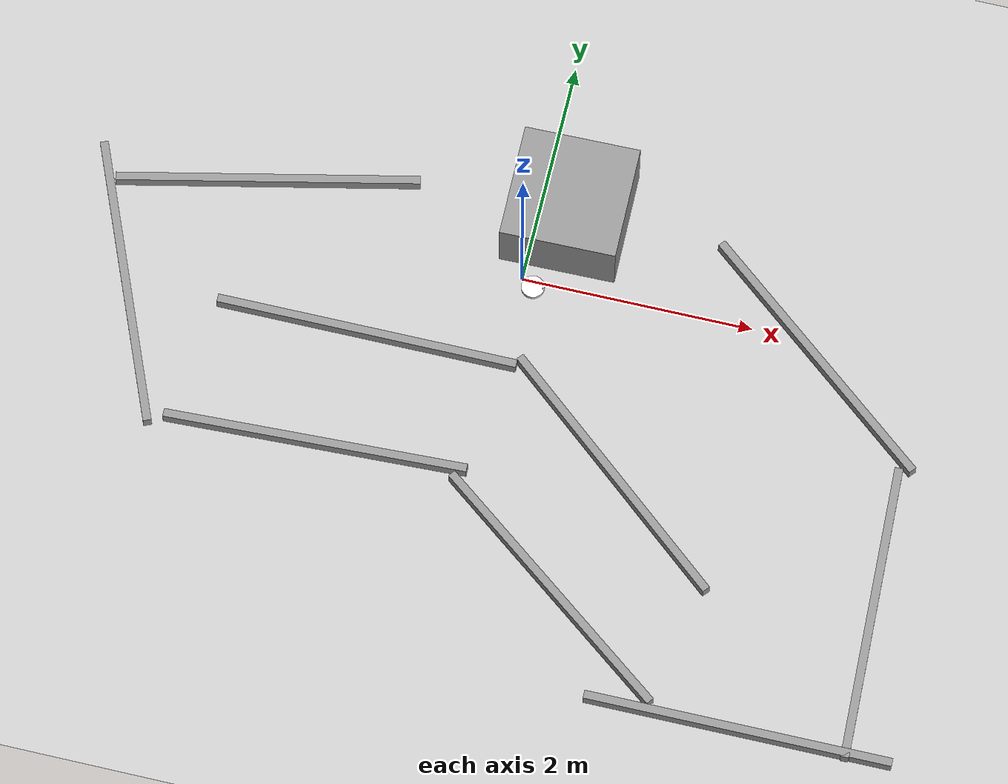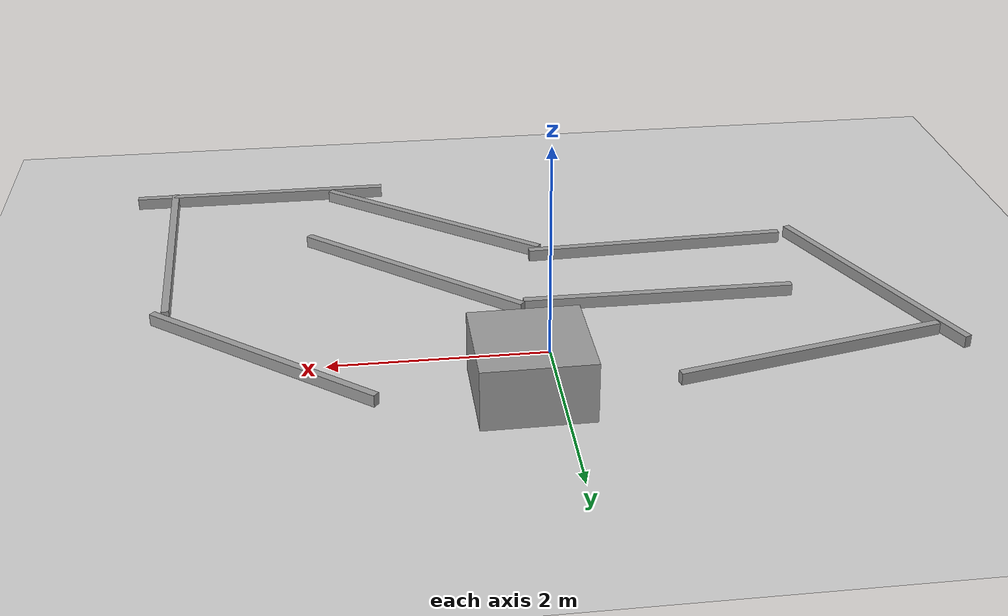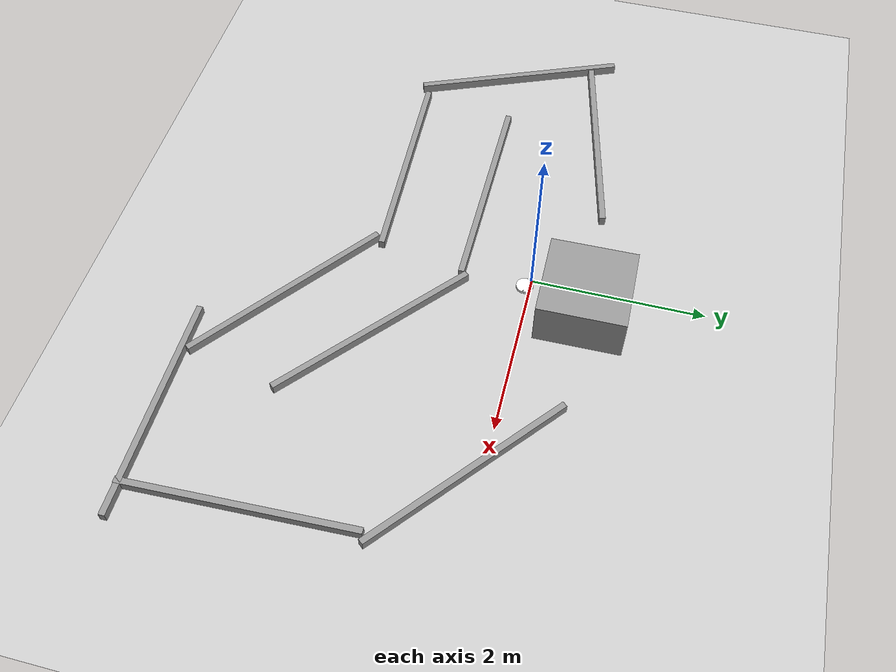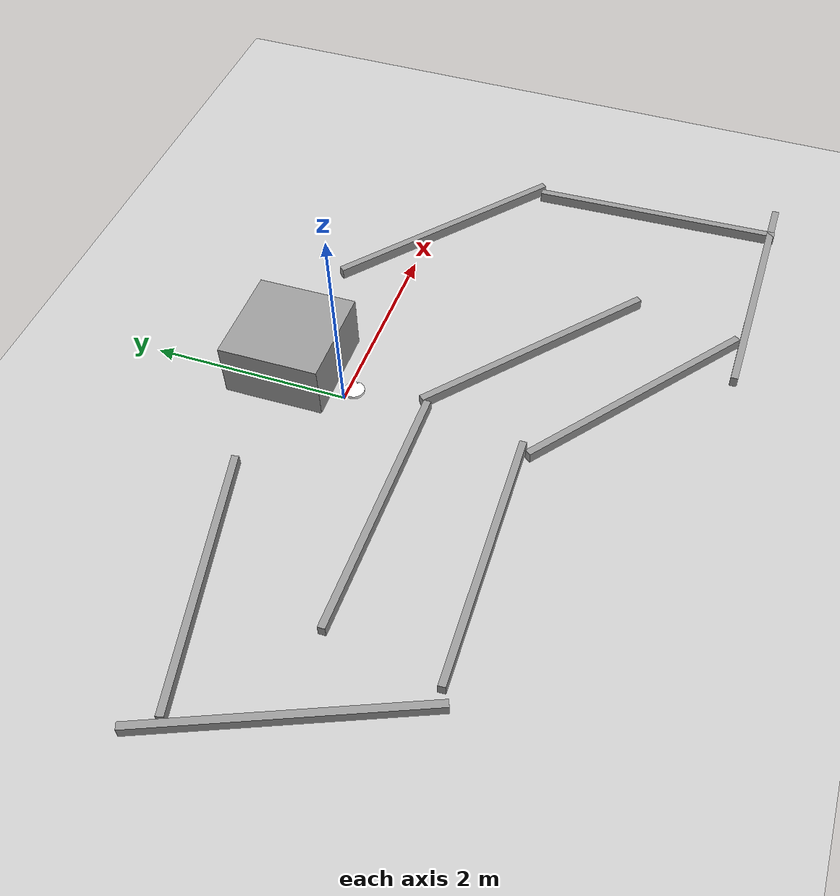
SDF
<sdf version="1.7">
 <world name="default">
  <light name="sun" type="directional">
   <pose>0 0 10 0 -0 0</pose>
   <diffuse>0.8 0.8 0.8 1</diffuse>
   <specular>0.2 0.2 0.2 1</specular>
   <attenuation>
    <range>1000</range>
    <constant>0.9</constant>
    <linear>0.01</linear>
    <quadratic>0.001</quadratic>
   </attenuation>
   <direction>-0.5 0.1 -0.9</direction>
   <spot><inner_angle>0</inner_angle><outer_angle>0</outer_angle><falloff>0</falloff></spot>
  </light>
  <model name="ground_plane">
   <static>1</static>
   <link name="link">
    <collision name="collision">
     <geometry><plane><normal>0 0 1</normal><size>100 100</size></plane></geometry>
     <surface>
      <contact><collide_bitmask>65535</collide_bitmask></contact>
      <friction><ode><mu>100</mu><mu2>50</mu2></ode></friction>
     </surface>
    </collision>
    <visual name="visual">
     <cast_shadows>0</cast_shadows>
     <geometry><plane><normal>0 0 1</normal><size>100 100</size></plane></geometry>
     <material>
      <script><uri>file://media/materials/scripts/gazebo.material</uri><name>Gazebo/Grey</name></script>
     </material>
    </visual>
   </link>
  </model>
  <gravity>0 0 -9.8</gravity>
  <magnetic_field>6e-06 2.3e-05 -4.2e-05</magnetic_field>
  <atmosphere type="adiabatic"/>
  <physics type="ode">
   <max_step_size>0.001</max_step_size>
   <real_time_factor>1</real_time_factor>
   <real_time_update_rate>1000</real_time_update_rate>
  </physics>
  <scene><ambient>0.4 0.4 0.4 1</ambient><background>0.7 0.7 0.7 1</background><shadows>1</shadows></scene>
  <spherical_coordinates>
   <surface_model>EARTH_WGS84</surface_model>
   <latitude_deg>0</latitude_deg>
   <longitude_deg>0</longitude_deg>
   <elevation>0</elevation>
   <heading_deg>0</heading_deg>
  </spherical_coordinates>
  <model name="my_robot">
   <static>0</static>
   <joint name="left_wheel_joint" type="revolute">
    <child>left_wheel</child>
    <parent>chassis</parent>
    <axis>
     <xyz expressed_in="__model__">0 0 1</xyz>
     <limit><lower>-1e+16</lower><upper>1e+16</upper></limit>
     <dynamics><spring_reference>0</spring_reference><spring_stiffness>0</spring_stiffness></dynamics>
    </axis>
   </joint>
   <joint name="right_wheel_joint" type="revolute">
    <child>right_wheel</child>
    <parent>chassis</parent>
    <axis>
     <xyz expressed_in="__model__">0 0 1</xyz>
     <limit><lower>-1e+16</lower><upper>1e+16</upper></limit>
     <dynamics><spring_reference>0</spring_reference><spring_stiffness>0</spring_stiffness></dynamics>
    </axis>
   </joint>
   <joint name="laser_joint" type="fixed"><child>laser</child><parent>chassis</parent></joint>
   <link name="laser">
    <pose>0.085 0 0.03 0 -0 0</pose>
    <collision name="collision"><geometry><box><size>0.01 0.01 0.01</size></box></geometry></collision>
    <visual name="visual">
     <geometry><box><size>0.01 0.01 0.01</size></box></geometry>
     <material>
      <ambient>1 1 1 1</ambient>
      <diffuse>1 1 1 1</diffuse>
      <specular>0 0 0 0</specular>
      <emissive>0 0 0 1</emissive>
     </material>
    </visual>
    <sensor name="head_hokuyo_sensor" type="ray">
     <visualize>1</visualize>
     <update_rate>40</update_rate>
     <ray>
      <scan>
       <horizontal>
        <samples>3</samples>
        <resolution>1</resolution>
        <min_angle>-45</min_angle>
        <max_angle>45</max_angle>
       </horizontal>
       <vertical><samples>1</samples><min_angle>0</min_angle><max_angle>0</max_angle></vertical>
      </scan>
      <range><min>0.01</min><max>100</max><resolution>0.01</resolution></range>
     </ray>
     <plugin name="gazebo_ros_head_hokuyo_controller" filename="libgazebo_ros_laser.so">
      <topicName>/laserSensor</topicName>
      <frameName>laser</frameName>
     </plugin>
    </sensor>
    <inertial>
     <inertia><ixx>1</ixx><ixy>0</ixy><ixz>0</ixz><iyy>1</iyy><iyz>0</iyz><izz>1</izz></inertia>
     <mass>1</mass>
    </inertial>
   </link>
   <link name="chassis">
    <inertial>
     <mass>50</mass>
     <inertia><ixx>1</ixx><ixy>0</ixy><ixz>0</ixz><iyy>1</iyy><iyz>0</iyz><izz>1</izz></inertia>
    </inertial>
    <pose>0 0 0.01 0 -0 0</pose>
    <collision name="collision">
     <geometry><cylinder><radius>0.1</radius><length>0.03</length></cylinder></geometry>
    </collision>
    <visual name="visual">
     <geometry><cylinder><radius>0.1</radius><length>0.03</length></cylinder></geometry>
     <material><ambient>1 1 1 1</ambient><diffuse>1 1 1 1</diffuse></material>
    </visual>
    <collision name="caster_front_collision">
     <pose>-0.06 0 -0.02 0 -0 0</pose>
     <geometry><sphere><radius>0.01</radius></sphere></geometry>
     <surface><friction><ode><mu>0</mu><mu2>0</mu2><slip1>1</slip1><slip2>1</slip2></ode></friction></surface>
    </collision>
    <visual name="caster_front_visual">
     <pose>-0.06 0 -0.02 0 -0 0</pose>
     <geometry><sphere><radius>0.01</radius></sphere></geometry>
    </visual>
    <collision name="caster_back_collision">
     <pose>0.06 0 -0.02 0 -0 0</pose>
     <geometry><sphere><radius>0.01</radius></sphere></geometry>
     <surface><friction><ode><mu>0</mu><mu2>0</mu2><slip1>1</slip1><slip2>1</slip2></ode></friction></surface>
    </collision>
    <visual name="caster_back_visual">
     <pose>0.06 0 -0.02 0 -0 0</pose>
     <geometry><sphere><radius>0.01</radius></sphere></geometry>
    </visual>
   </link>
   <link name="left_wheel">
    <pose>0 0.075 0 -0 1.5707 1.5707</pose>
    <collision name="collision">
     <geometry><cylinder><radius>0.02</radius><length>0.02</length></cylinder></geometry>
    </collision>
    <visual name="visual">
     <geometry><cylinder><radius>0.02</radius><length>0.02</length></cylinder></geometry>
     <material>
      <ambient>1 1 1 1</ambient>
      <diffuse>1 1 1 1</diffuse>
      <specular>0 0 0 0</specular>
      <emissive>0 0 0 1</emissive>
     </material>
    </visual>
    <inertial>
     <inertia><ixx>1</ixx><ixy>0</ixy><ixz>0</ixz><iyy>1</iyy><iyz>0</iyz><izz>1</izz></inertia>
     <mass>1</mass>
    </inertial>
   </link>
   <link name="right_wheel">
    <pose>0 -0.075 0 -0 1.5707 1.5707</pose>
    <collision name="collision">
     <geometry><cylinder><radius>0.02</radius><length>0.02</length></cylinder></geometry>
    </collision>
    <visual name="visual">
     <geometry><cylinder><radius>0.02</radius><length>0.02</length></cylinder></geometry>
     <material>
      <ambient>1 1 1 1</ambient>
      <diffuse>1 1 1 1</diffuse>
      <specular>0 0 0 0</specular>
      <emissive>0 0 0 1</emissive>
     </material>
    </visual>
    <inertial>
     <inertia><ixx>1</ixx><ixy>0</ixy><ixz>0</ixz><iyy>1</iyy><iyz>0</iyz><izz>1</izz></inertia>
     <mass>1</mass>
    </inertial>
   </link>
   <plugin name="differential_drive_controller" filename="libgazebo_ros_diff_drive.so">
    <robotNamespace>my_robot</robotNamespace>
    <alwaysOn>1</alwaysOn>
    <updateRate>10</updateRate>
    <legacyMode>1</legacyMode>
    <leftJoint>right_wheel_joint</leftJoint>
    <rightJoint>left_wheel_joint</rightJoint>
    <torque>20</torque>
    <commandTopic>cmd_vel</commandTopic>
    <robotBaseFrame>chassis</robotBaseFrame>
    <odometrySource>world</odometrySource>
   </plugin>
   <pose>0.105991 -0.062606 0.02 1e-06 -0 -0.025005</pose>
  </model>
  <model name="unit_box">
   <pose>0.257449 0.648807 0.056586 -5.2e-05 -0.00011 0.011966</pose>
   <link name="link">
    <inertial>
     <mass>1</mass>
     <inertia>
      <ixx>0.166667</ixx>
      <ixy>0</ixy>
      <ixz>0</ixz>
      <iyy>0.166667</iyy>
      <iyz>0</iyz>
      <izz>0.166667</izz>
     </inertia>
    </inertial>
    <collision name="collision">
     <geometry><box><size>0.999997 0.999989 0.999992</size></box></geometry>
    </collision>
    <visual name="visual">
     <geometry><box><size>0.999997 0.999989 0.999992</size></box></geometry>
     <material>
      <script><name>Gazebo/Grey</name><uri>file://media/materials/scripts/gazebo.material</uri></script>
     </material>
    </visual>
   </link>
  </model>
  <model name="unit_box_clone">
   <pose>2.5822 -0.152929 0.056711 6e-06 -1.3e-05 -0.688384</pose>
   <link name="link">
    <inertial>
     <mass>1</mass>
     <inertia>
      <ixx>0.166667</ixx>
      <ixy>0</ixy>
      <ixz>0</ixz>
      <iyy>0.166667</iyy>
      <iyz>0</iyz>
      <izz>0.166667</izz>
     </inertia>
    </inertial>
    <collision name="collision"><geometry><box><size>2.59763 0.071532 0.113455</size></box></geometry></collision>
    <visual name="visual">
     <geometry><box><size>2.59763 0.071532 0.113455</size></box></geometry>
     <material>
      <script><name>Gazebo/Grey</name><uri>file://media/materials/scripts/gazebo.material</uri></script>
     </material>
    </visual>
   </link>
  </model>
  <model name="unit_box_clone_0">
   <pose>1.14507 -1.57571 0.056728 -4e-06 -0 -0.700968</pose>
   <link name="link">
    <inertial>
     <mass>1</mass>
     <inertia>
      <ixx>0.166667</ixx>
      <ixy>0</ixy>
      <ixz>0</ixz>
      <iyy>0.166667</iyy>
      <iyz>0</iyz>
      <izz>0.166667</izz>
     </inertia>
    </inertial>
    <collision name="collision"><geometry><box><size>2.59763 0.071532 0.113455</size></box></geometry></collision>
    <visual name="visual">
     <geometry><box><size>2.59763 0.071532 0.113455</size></box></geometry>
     <material>
      <script><name>Gazebo/Grey</name><uri>file://media/materials/scripts/gazebo.material</uri></script>
     </material>
    </visual>
   </link>
  </model>
  <model name="unit_box_clone_1">
   <pose>-1.16053 -0.807806 0.056554 1.4e-05 -0.000134 -0.000698</pose>
   <link name="link">
    <inertial>
     <mass>1</mass>
     <inertia>
      <ixx>0.166667</ixx>
      <ixy>0</ixy>
      <ixz>0</ixz>
      <iyy>0.166667</iyy>
      <iyz>0</iyz>
      <izz>0.166667</izz>
     </inertia>
    </inertial>
    <collision name="collision"><geometry><box><size>2.59763 0.071532 0.113455</size></box></geometry></collision>
    <visual name="visual">
     <geometry><box><size>2.59763 0.071532 0.113455</size></box></geometry>
     <material>
      <script><name>Gazebo/Grey</name><uri>file://media/materials/scripts/gazebo.material</uri></script>
     </material>
    </visual>
   </link>
  </model>
  <model name="unit_box_clone_2">
   <pose>3.5165 -2.28348 0.056653 7.6e-05 -6e-05 -1.53464</pose>
   <link name="link">
    <inertial>
     <mass>1</mass>
     <inertia>
      <ixx>0.166667</ixx>
      <ixy>0</ixy>
      <ixz>0</ixz>
      <iyy>0.166667</iyy>
      <iyz>0</iyz>
      <izz>0.166667</izz>
     </inertia>
    </inertial>
    <collision name="collision"><geometry><box><size>2.59763 0.071532 0.113455</size></box></geometry></collision>
    <visual name="visual">
     <geometry><box><size>2.59763 0.071532 0.113455</size></box></geometry>
     <material>
      <script><name>Gazebo/Grey</name><uri>file://media/materials/scripts/gazebo.material</uri></script>
     </material>
    </visual>
   </link>
  </model>
  <model name="unit_box_clone_0_clone">
   <pose>0.871452 -2.68739 0.056728 -1.1e-05 -0 -0.653172</pose>
   <link name="link">
    <inertial>
     <mass>1</mass>
     <inertia>
      <ixx>0.166667</ixx>
      <ixy>0</ixy>
      <ixz>0</ixz>
      <iyy>0.166667</iyy>
      <iyz>0</iyz>
      <izz>0.166667</izz>
     </inertia>
    </inertial>
    <collision name="collision"><geometry><box><size>2.59763 0.071532 0.113455</size></box></geometry></collision>
    <visual name="visual">
     <geometry><box><size>2.59763 0.071532 0.113455</size></box></geometry>
     <material>
      <script><name>Gazebo/Grey</name><uri>file://media/materials/scripts/gazebo.material</uri></script>
     </material>
    </visual>
   </link>
  </model>
  <model name="unit_box_clone_1_clone">
   <pose>-1.3452 -1.87284 0.056636 7.4e-05 -7.2e-05 0.039323</pose>
   <link name="link">
    <inertial>
     <mass>1</mass>
     <inertia>
      <ixx>0.166667</ixx>
      <ixy>0</ixy>
      <ixz>0</ixz>
      <iyy>0.166667</iyy>
      <iyz>0</iyz>
      <izz>0.166667</izz>
     </inertia>
    </inertial>
    <collision name="collision"><geometry><box><size>2.59763 0.071532 0.113455</size></box></geometry></collision>
    <visual name="visual">
     <geometry><box><size>2.59763 0.071532 0.113455</size></box></geometry>
     <material>
      <script><name>Gazebo/Grey</name><uri>file://media/materials/scripts/gazebo.material</uri></script>
     </material>
    </visual>
   </link>
  </model>
  <model name="unit_box_clone_2_clone">
   <pose>2.65467 -3.53907 0.056728 2e-06 -0 0.002989</pose>
   <link name="link">
    <inertial>
     <mass>1</mass>
     <inertia>
      <ixx>0.166667</ixx>
      <ixy>0</ixy>
      <ixz>0</ixz>
      <iyy>0.166667</iyy>
      <iyz>0</iyz>
      <izz>0.166667</izz>
     </inertia>
    </inertial>
    <collision name="collision"><geometry><box><size>2.59764 0.071532 0.113455</size></box></geometry></collision>
    <visual name="visual">
     <geometry><box><size>2.59764 0.071532 0.113455</size></box></geometry>
     <material>
      <script><name>Gazebo/Grey</name><uri>file://media/materials/scripts/gazebo.material</uri></script>
     </material>
    </visual>
   </link>
  </model>
  <model name="unit_box_clone_3">
   <pose>-2.31673 0.365469 0.056722 -5e-06 -4e-06 0.218476</pose>
   <link name="link">
    <inertial>
     <mass>1</mass>
     <inertia>
      <ixx>0.166667</ixx>
      <ixy>0</ixy>
      <ixz>0</ixz>
      <iyy>0.166667</iyy>
      <iyz>0</iyz>
      <izz>0.166667</izz>
     </inertia>
    </inertial>
    <collision name="collision"><geometry><box><size>2.59763 0.071532 0.113455</size></box></geometry></collision>
    <visual name="visual">
     <geometry><box><size>2.59763 0.071532 0.113455</size></box></geometry>
     <material>
      <script><name>Gazebo/Grey</name><uri>file://media/materials/scripts/gazebo.material</uri></script>
     </material>
    </visual>
   </link>
  </model>
  <model name="unit_box_clone_3_clone">
   <pose>-3.2593 -0.827758 0.056728 0 -0 1.96738</pose>
   <link name="link">
    <inertial>
     <mass>1</mass>
     <inertia>
      <ixx>0.166667</ixx>
      <ixy>0</ixy>
      <ixz>0</ixz>
      <iyy>0.166667</iyy>
      <iyz>0</iyz>
      <izz>0.166667</izz>
     </inertia>
    </inertial>
    <collision name="collision"><geometry><box><size>2.59763 0.071532 0.113455</size></box></geometry></collision>
    <visual name="visual">
     <geometry><box><size>2.59763 0.071532 0.113455</size></box></geometry>
     <material>
      <script><name>Gazebo/Grey</name><uri>file://media/materials/scripts/gazebo.material</uri></script>
     </material>
    </visual>
   </link>
  </model>
 </world>
</sdf>
